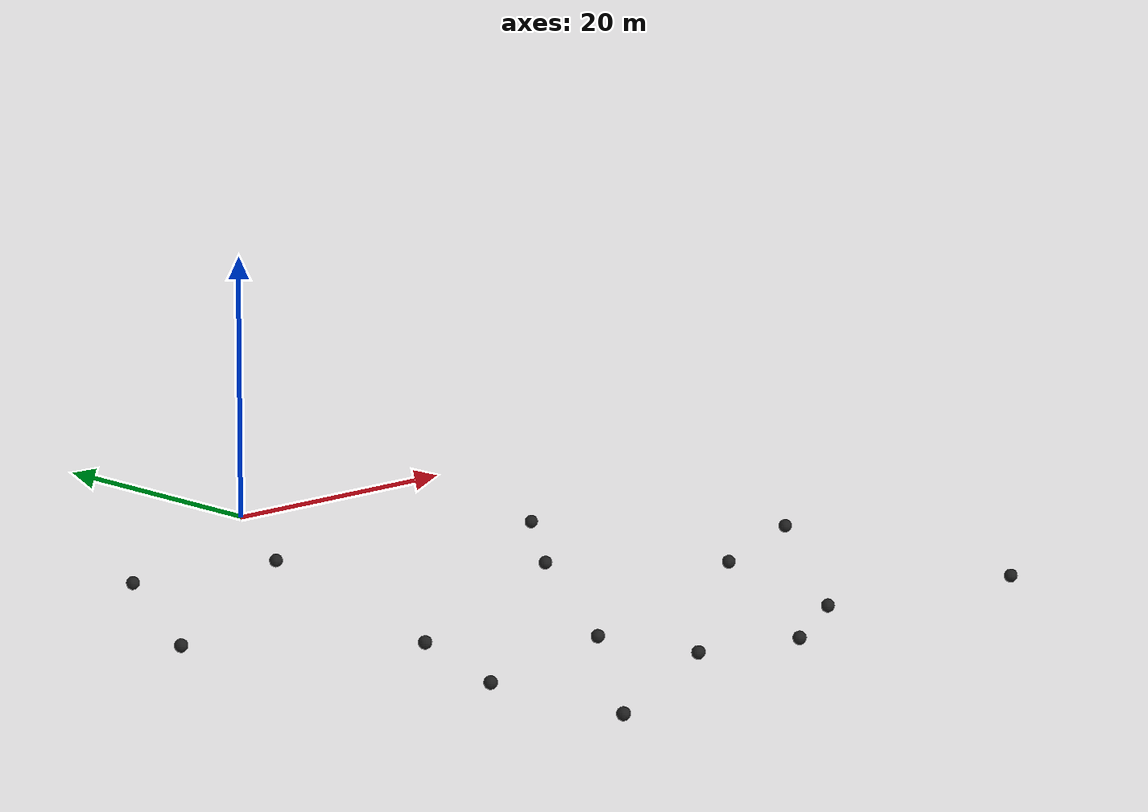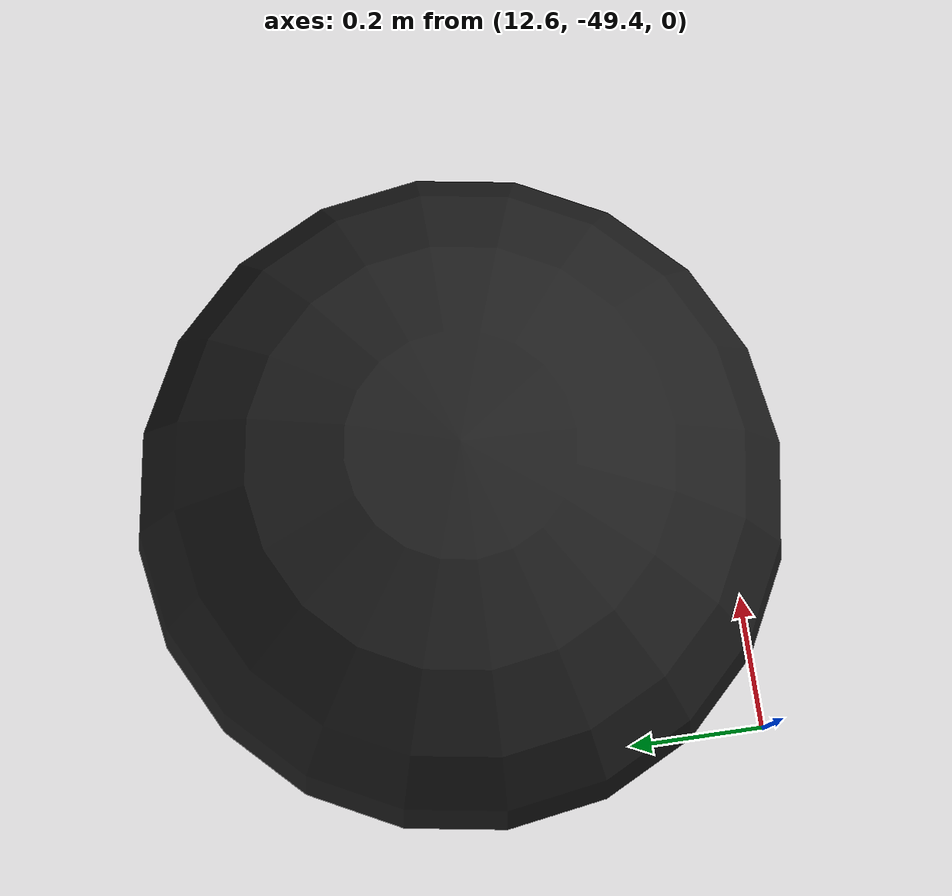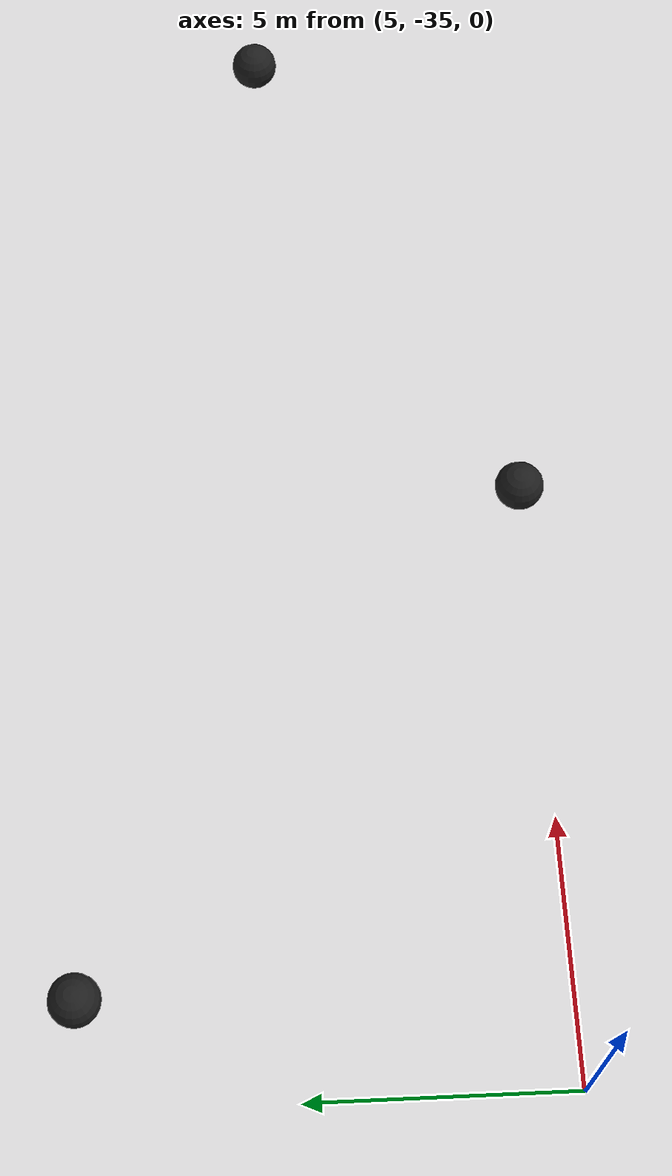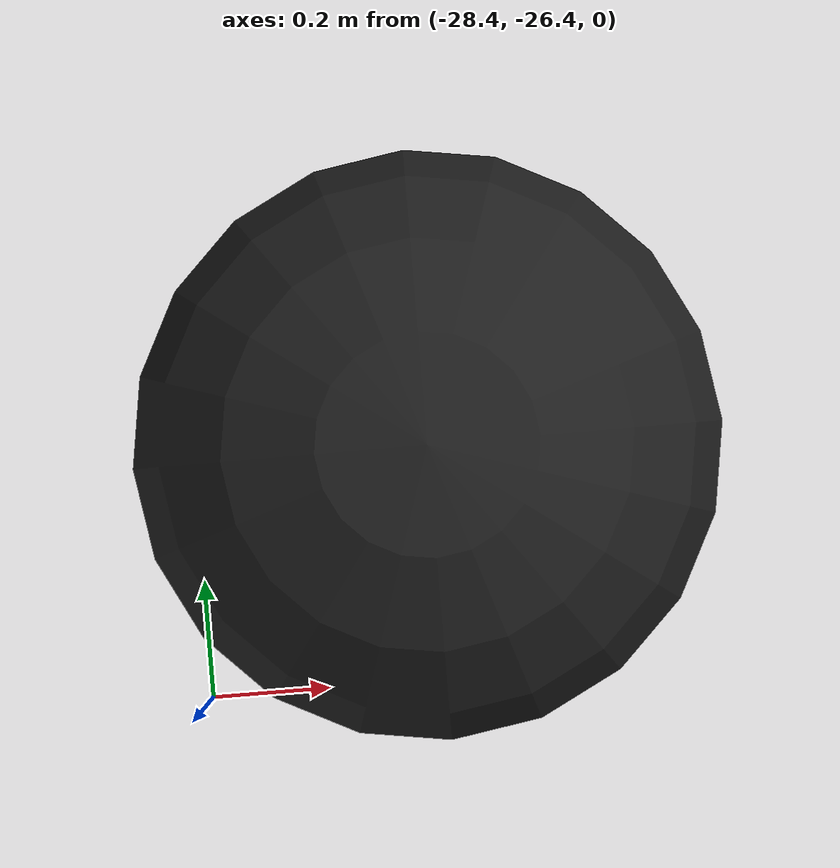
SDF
<sdf version="1.6">
 <world name="robotx_example_course">
  <scene><sky><clouds><speed>12</speed></clouds></sky><grid>0</grid><origin_visual>0</origin_visual></scene>
  <spherical_coordinates>
   <surface_model>EARTH_WGS84</surface_model>
   <world_frame_orientation>ENU</world_frame_orientation>
   <latitude_deg>-33.724223</latitude_deg>
   <longitude_deg>150.679736</longitude_deg>
   <elevation>0.0</elevation>
   <heading_deg>0.0</heading_deg>
  </spherical_coordinates>
  <include><uri>model://sun</uri></include>
  <plugin filename="libusv_gazebo_wind_plugin.so" name="wind">
   <wind_obj>
    <name>wamv</name>
    <link_name>wamv/base_link</link_name>
    <coeff_vector>.5 .5 .33</coeff_vector>
   </wind_obj>
   <wind_direction>270</wind_direction>
   <wind_mean_velocity>0</wind_mean_velocity>
   <var_wind_gain_constants>0</var_wind_gain_constants>
   <var_wind_time_constants>1</var_wind_time_constants>
   <update_rate>10</update_rate>
   <topic_wind_speed>/vrx/debug/wind/speed</topic_wind_speed>
   <topic_wind_direction>/vrx/debug/wind/direction</topic_wind_direction>
  </plugin>
  <include><name>buoys</name><uri>model://obstacle_course_regular</uri></include>
 </world>
</sdf>

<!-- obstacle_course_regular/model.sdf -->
<!-- automatically generated by the 'generate_avoid_obstacles_buoys.py' script -->
<sdf version="1.6">
  <model name="obstacle_course_regular">
    <include>
      <name>polyform_a7_0</name>
      <pose>-19.0 -48.0 0.0 0 0 0 </pose>
      <uri>model://polyform_a7</uri>
    </include>

    <include>
      <name>polyform_a7_1</name>
      <pose>-5.0 -44.0 0.0 0 0 0 </pose>
      <uri>model://polyform_a7</uri>
    </include>

    <include>
      <name>polyform_a7_2</name>
      <pose>-19.0 -10.0 0.0 0 0 0 </pose>
      <uri>model://polyform_a7</uri>
    </include>

    <include>
      <name>polyform_a7_3</name>
      <pose>-3.0 -52.0 0.0 0 0 0 </pose>
      <uri>model://polyform_a7</uri>
    </include>

    <include>
      <name>polyform_a7_4</name>
      <pose>13.0 -49.0 0.0 0 0 0 </pose>
      <uri>model://polyform_a7</uri>
    </include>

    <include>
      <name>polyform_a7_5</name>
      <pose>28.0 -30.0 0.0 0 0 0 </pose>
      <uri>model://polyform_a7</uri>
    </include>

    <include>
      <name>polyform_a7_6</name>
      <pose>15.0 -16.0 0.0 0 0 0 </pose>
      <uri>model://polyform_a7</uri>
    </include>

    <include>
      <name>polyform_a7_7</name>
      <pose>5.0 -54.0 0.0 0 0 0 </pose>
      <uri>model://polyform_a7</uri>
    </include>

    <include>
      <name>polyform_a7_8</name>
      <pose>-15.0 -37.0 0.0 0 0 0 </pose>
      <uri>model://polyform_a7</uri>
    </include>

    <include>
      <name>polyform_a7_9</name>
      <pose>-18.0 -60.0 0.0 0 0 0 </pose>
      <uri>model://polyform_a7</uri>
    </include>

    <include>
      <name>polyform_a7_10</name>
      <pose>-7.0 -12.0 0.0 0 0 0 </pose>
      <uri>model://polyform_a7</uri>
    </include>

    <include>
      <name>polyform_a7_11</name>
      <pose>-28.0 -26.0 0.0 0 0 0 </pose>
      <uri>model://polyform_a7</uri>
    </include>

    <include>
      <name>polyform_a7_12</name>
      <pose>29.0 -52.0 0.0 0 0 0 </pose>
      <uri>model://polyform_a7</uri>
    </include>

    <include>
      <name>polyform_a7_13</name>
      <pose>7.0 -26.0 0.0 0 0 0 </pose>
      <uri>model://polyform_a7</uri>
    </include>

    <include>
      <name>polyform_a7_14</name>
      <pose>17.0 -35.0 0.0 0 0 0 </pose>
      <uri>model://polyform_a7</uri>
    </include>

  </model>
</sdf>

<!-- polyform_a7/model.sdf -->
<sdf version="1.6">
  <!-- Reference: https://www.polyformus.com/buoys/a-series -->
  <model name="polyform_a7">
    <static>false</static>
    <pose>0 0 0 0 0 0</pose>
    <link name="base_link">
      <inertial>
        <!-- Reference: https://www.sailrite.com/PDF/Polyform-Buoys-Fenders-Accessories.pdf, page 8 -->
        <mass>24.49</mass>
      </inertial>
      <visual name="visual">
        <geometry>
          <sphere><radius>0.4955</radius></sphere>
        </geometry>
        <material>
          <script>
            <uri>file://media/materials/scripts/gazebo.material</uri>
            <name>Gazebo/Black</name>
          </script>
          <ambient>1 0 0 1</ambient>
          <diffuse>1 0 0 1</diffuse>
          <specular>0.1 0.1 0.1 1</specular>
          <emissive>0 0 0 0</emissive>
        </material>
      </visual>
      <collision name="collision">
        <geometry>
          <sphere><radius>0.4955</radius></sphere>
        </geometry>
      </collision>
    </link>

    <plugin name="BuoyancyPlugin" filename="libbuoyancy_gazebo_plugin.so">
      <wave_model>ocean_waves</wave_model>
      <fluid_density>1000</fluid_density>
      <fluid_level>0.0</fluid_level>
      <linear_drag>20.0</linear_drag>
      <angular_drag>2.0</angular_drag>
      <buoyancy name="buoyancy">
        <link_name>base_link</link_name>
        <geometry>
          <sphere><radius>0.4955</radius></sphere>
        </geometry>
      </buoyancy>
    </plugin>

  </model>
</sdf>
